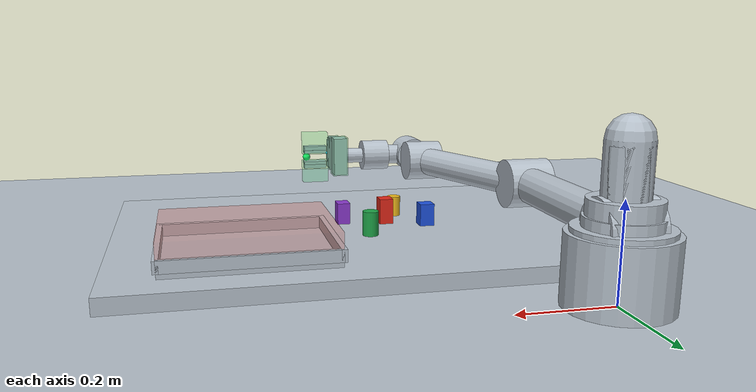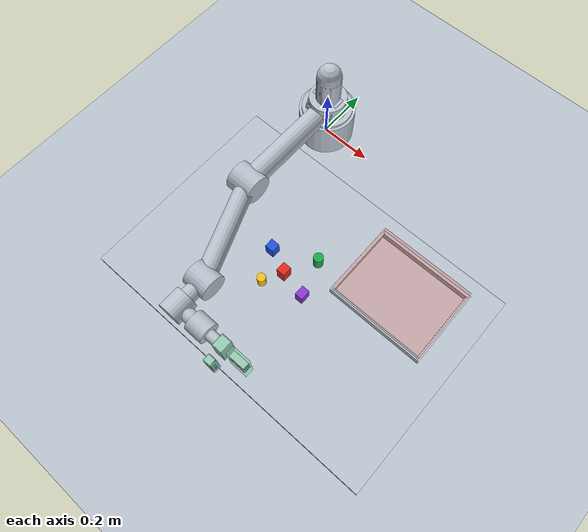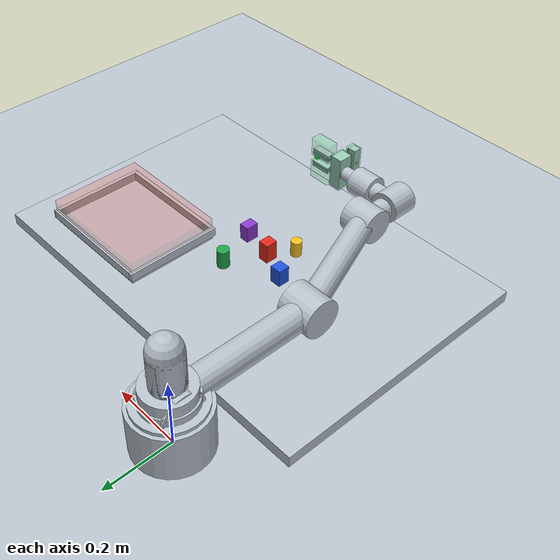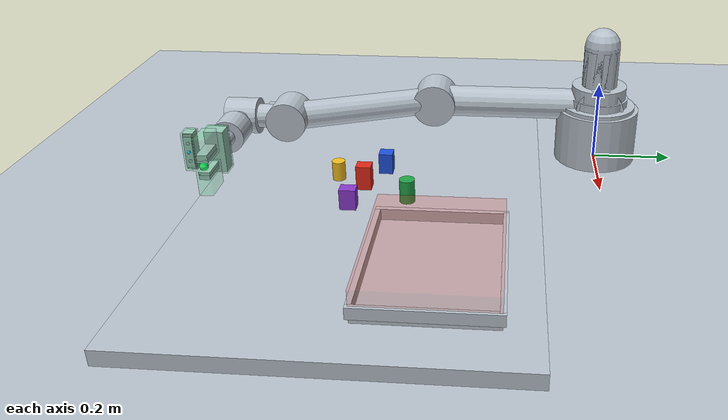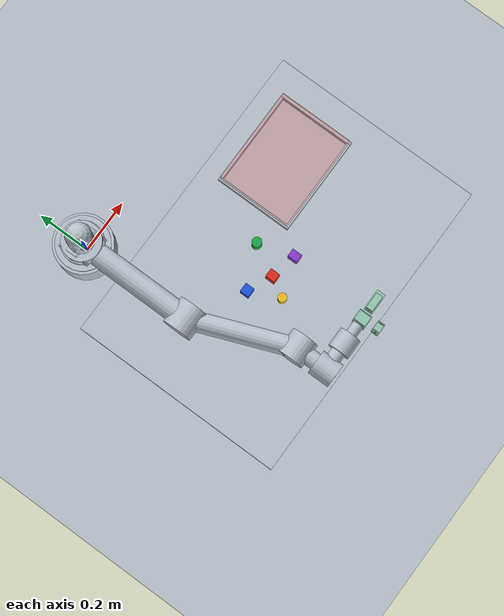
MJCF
<mujoco model="dobot_cr5_planning">
  <compiler angle="radian" autolimits="true" />
  <option timestep="0.002" gravity="0 0 -9.81" integrator="implicitfast" />
  <visual>
    <global offwidth="1280" offheight="960" />
  </visual>
  <default>
    <joint damping="2.0" armature="0.02" frictionloss="0.02" />
    <geom type="capsule" rgba="0.72 0.76 0.80 1" contype="0" conaffinity="0" group="1" />
    <site size="0.012" rgba="0.1 0.45 0.95 1" />
    <position kp="250" kv="18" forcerange="-120 120" />
  </default>
  <asset>
    <material name="base_mat" rgba="0.28 0.31 0.34 1" />
    <material name="link_mat" rgba="0.70 0.74 0.78 1" />
    <material name="joint_mat" rgba="0.12 0.14 0.16 1" />
    <material name="tool_mat" rgba="0.15 0.42 0.86 1" />
    <texture name="grid" type="2d" builtin="checker" rgb1="0.88 0.88 0.86" rgb2="0.72 0.74 0.76" width="512" height="512" />
    <material name="floor_mat" texture="grid" texrepeat="4 4" reflectance="0.15" />
    <material name="gripper_palm_mat" rgba="0.18 0.20 0.22 1" />
    <material name="gripper_finger_mat" rgba="0.06 0.07 0.08 1" />
    <material name="gripper_pad_mat" rgba="0.02 0.02 0.02 1" />
    <material name="pick_table_mat" rgba="0.55 0.57 0.54 1" />
    <material name="tray_mat" rgba="0.12 0.13 0.14 1" />
    <material name="red_cube_mat" rgba="0.88 0.16 0.1 1" />
    <material name="blue_cube_mat" rgba="0.12 0.32 0.86 1" />
    <material name="green_cylinder_mat" rgba="0.12 0.64 0.28 1" />
    <material name="yellow_cylinder_mat" rgba="0.95 0.74 0.12 1" />
    <material name="purple_cube_mat" rgba="0.54 0.22 0.8 1" />
    <material name="d435i_body_mat" rgba="0.18 0.19 0.20 1" />
    <material name="d435i_face_mat" rgba="0.02 0.025 0.030 1" />
    <material name="d435i_lens_mat" rgba="0.02 0.18 0.32 1" />
    <material name="d435i_accent_mat" rgba="0.05 0.58 0.95 1" />
  <material name="collision_mat" rgba="0.10 0.95 0.35 0.18" /></asset>
  <worldbody>
    <light name="key" pos="1.5 -2.0 2.5" dir="-1 1 -1" diffuse="0.8 0.8 0.8" />
    <geom name="floor" type="plane" size="1.8 1.8 0.02" material="floor_mat" contype="0" conaffinity="0" group="1" />
    <body name="base_link" pos="0 0 0">
      <geom name="base_column" type="cylinder" size="0.105 0.07" pos="0 0 0.07" material="base_mat" contype="0" conaffinity="0" group="1" />
      <geom name="base_top" type="cylinder" size="0.075 0.025" pos="0 0 0.145" material="joint_mat" contype="0" conaffinity="0" group="1" />
      <body name="Link1" pos="0 0 0.147">
        <joint name="joint1" type="hinge" axis="0 0 1" range="-3.14 3.14" />
        <geom name="link1_joint" type="cylinder" size="0.070 0.055" pos="0 0 0" material="joint_mat" contype="0" conaffinity="0" group="1" />
        <geom name="link1_body" fromto="0 0 0.03 0 0 0.16" size="0.045" material="link_mat" contype="0" conaffinity="0" group="1" />
        <body name="Link2" pos="0 0 0" euler="1.5708 1.5708 0">
          <joint name="joint2" type="hinge" axis="0 0 1" range="-3.14 3.14" />
          <geom name="link2_joint" type="cylinder" size="0.060 0.055" pos="0 0 0" material="joint_mat" contype="0" conaffinity="0" group="1" />
          <geom name="link2_arm" fromto="0 0 0 -0.427 0 0" size="0.040" material="link_mat" contype="0" conaffinity="0" group="1" />
          <body name="Link3" pos="-0.427 0 0">
            <joint name="joint3" type="hinge" axis="0 0 1" range="-2.86 2.86" />
            <geom name="link3_joint" type="cylinder" size="0.055 0.050" pos="0 0 0" material="joint_mat" contype="0" conaffinity="0" group="1" />
            <geom name="link3_arm" fromto="0 0 0 -0.357 0 0.141" size="0.035" material="link_mat" contype="0" conaffinity="0" group="1" />
            <body name="Link4" pos="-0.357 0 0.141" euler="0 0 -1.5708">
              <joint name="joint4" type="hinge" axis="0 0 1" range="-3.14 3.14" />
              <geom name="link4_joint" type="cylinder" size="0.050 0.045" pos="0 0 0" material="joint_mat" contype="0" conaffinity="0" group="1" />
              <geom name="link4_body" fromto="0 0 0 0 -0.116 0" size="0.030" material="link_mat" contype="0" conaffinity="0" group="1" />
              <body name="Link5" pos="0 -0.116 0" euler="1.5708 0 0">
                <joint name="joint5" type="hinge" axis="0 0 1" range="-3.14 3.14" />
                <geom name="link5_joint" type="cylinder" size="0.045 0.040" pos="0 0 0" material="joint_mat" contype="0" conaffinity="0" group="1" />
                <geom name="link5_body" fromto="0 0 0 0 0.105 0" size="0.026" material="link_mat" contype="0" conaffinity="0" group="1" />
                <body name="Link6" pos="0 0.105 0" euler="-1.5708 0 0">
                  <joint name="joint6" type="hinge" axis="0 0 1" range="-6.28 6.28" />
                  <geom name="link6_joint" type="cylinder" size="0.040 0.035" pos="0 0 0" material="joint_mat" contype="0" conaffinity="0" group="1" />
                  <geom name="tool_stub" fromto="0 0 0 0 0 0.08" size="0.020" material="tool_mat" contype="0" conaffinity="0" group="1" />
                  <site name="tool0" pos="0 0 0.08" quat="1 0 0 0" />
                  <body name="parallel_gripper" pos="0 0 0.08">
                    <geom name="gripper_palm" type="box" pos="0 0 0.018" size="0.050 0.022 0.018" material="gripper_palm_mat" contype="0" conaffinity="0" group="1" />
                    <site name="gripper_mount" pos="0 0 0" size="0.008" rgba="0.95 0.65 0.10 1" />
                    <site name="gripper_tcp" pos="0 0 0.110" size="0.010" rgba="0.10 0.95 0.40 1" />
                    <geom name="collision_gripper_palm_envelope" type="box" pos="0 0 0.018" size="0.052 0.024 0.020" rgba="0.10 0.95 0.35 0.16" contype="1" conaffinity="1" group="2" />
                    <geom name="collision_gripper_left_finger_sweep" type="box" pos="0.0385 0 0.087" size="0.029 0.016 0.034" rgba="0.10 0.95 0.35 0.16" contype="1" conaffinity="1" group="2" />
                    <geom name="collision_gripper_right_finger_sweep" type="box" pos="-0.0385 0 0.087" size="0.029 0.016 0.034" rgba="0.10 0.95 0.35 0.16" contype="1" conaffinity="1" group="2" />
                    <body name="gripper_left_finger" pos="0.023 0 0.052">
                      <joint name="gripper_left_slide" type="slide" axis="1 0 0" range="0 0.035" damping="0.6" armature="0.001" />
                      <geom name="gripper_left_finger_geom" type="box" pos="0 0 0.035" size="0.007 0.012 0.030" material="gripper_finger_mat" contype="0" conaffinity="0" group="1" />
                      <geom name="gripper_left_pad" type="box" pos="-0.0075 0 0.035" size="0.004 0.013 0.030" material="gripper_pad_mat" friction="3.0 0.08 0.006" condim="4" solref="0.006 1" solimp="0.95 0.99 0.002" contype="0" conaffinity="0" group="1" />
                    </body>
                    <body name="gripper_right_finger" pos="-0.023 0 0.052">
                      <joint name="gripper_right_slide" type="slide" axis="-1 0 0" range="0 0.035" damping="0.6" armature="0.001" />
                      <geom name="gripper_right_finger_geom" type="box" pos="0 0 0.035" size="0.007 0.012 0.030" material="gripper_finger_mat" contype="0" conaffinity="0" group="1" />
                      <geom name="gripper_right_pad" type="box" pos="0.0075 0 0.035" size="0.004 0.013 0.030" material="gripper_pad_mat" friction="3.0 0.08 0.006" condim="4" solref="0.006 1" solimp="0.95 0.99 0.002" contype="0" conaffinity="0" group="1" />
                    </body>
                    <body name="d435i_camera_body" pos="0 -0.060 0.024">
                      <geom name="d435i_body_geom" type="box" pos="0 0 0" size="0.045 0.012 0.013" material="d435i_body_mat" contype="0" conaffinity="0" group="1" />
                      <geom name="collision_d435i_body_envelope" type="box" pos="0 0 0.002" size="0.047 0.014 0.017" rgba="0.10 0.95 0.35 0.16" contype="1" conaffinity="1" group="2" />
                      <geom name="d435i_front_face" type="box" pos="0 0 0.0135" size="0.043 0.010 0.0015" material="d435i_face_mat" contype="0" conaffinity="0" group="1" />
                      <geom name="d435i_blue_accent" type="box" pos="0 0 0.0165" size="0.038 0.0105 0.0012" material="d435i_accent_mat" contype="0" conaffinity="0" group="1" />
                      <geom name="d435i_left_ir_lens" type="cylinder" pos="-0.022 0 0.016" size="0.004 0.002" material="d435i_lens_mat" contype="0" conaffinity="0" group="1" />
                      <geom name="d435i_rgb_lens" type="cylinder" pos="0 0 0.016" size="0.004 0.002" material="d435i_lens_mat" contype="0" conaffinity="0" group="1" />
                      <geom name="d435i_right_ir_lens" type="cylinder" pos="0.022 0 0.016" size="0.004 0.002" material="d435i_lens_mat" contype="0" conaffinity="0" group="1" />
                      <site name="d435i_mount" pos="0 0 -0.013" size="0.004" rgba="0.7 0.7 0.1 1" />
                      <site name="d435i_depth_optical_frame" pos="0 0 0.018" size="0.004" rgba="0.1 0.8 1 1" />
                      <camera name="d435i_depth" pos="0 0 0.018" xyaxes="1 0 0 0 -1 0" fovy="65" />
                      <camera name="d435i_rgb" pos="0 0 0.018" xyaxes="1 0 0 0 -1 0" fovy="65" />
                    </body>
                  </body>
                <geom name="collision_tool" type="capsule" fromto="0 0 0 0 0 0.08" size="0.020" material="collision_mat" contype="1" conaffinity="1" group="2" /></body>
              <geom name="collision_link5" type="capsule" fromto="0 0 0 0 0.105 0" size="0.026" material="collision_mat" contype="1" conaffinity="1" group="2" /></body>
            <geom name="collision_link4" type="capsule" fromto="0 0 0 0 -0.116 0" size="0.030" material="collision_mat" contype="1" conaffinity="1" group="2" /></body>
          <geom name="collision_link3" type="capsule" fromto="0 0 0 -0.357 0 0.141" size="0.035" material="collision_mat" contype="1" conaffinity="1" group="2" /></body>
        <geom name="collision_link2" type="capsule" fromto="0 0 0 -0.427 0 0" size="0.040" material="collision_mat" contype="1" conaffinity="1" group="2" /></body>
      <geom name="collision_link1" type="capsule" fromto="0 0 0.025 0 0 0.150" size="0.045" material="collision_mat" contype="1" conaffinity="1" group="2" /></body>
    <geom name="collision_base" type="cylinder" size="0.095 0.075" pos="0 0 0.075" material="collision_mat" contype="1" conaffinity="1" group="2" /></body>
    <geom name="pick_table" type="box" pos="0.35 -0.55 0.0175" size="0.58 0.4 0.0175" material="pick_table_mat" friction="1.0 0.02 0.002" contype="0" conaffinity="0" group="1" />
    <geom name="tabletop_tray_floor" type="box" pos="0.64 -0.37 0.041" size="0.18 0.14 0.006" material="tray_mat" friction="1.2 0.02 0.002" contype="0" conaffinity="0" group="1" />
    <geom name="tabletop_tray_wall_front" type="box" pos="0.82 -0.37 0.06" size="0.006 0.146 0.013" material="tray_mat" friction="1.2 0.02 0.002" contype="0" conaffinity="0" group="1" />
    <geom name="tabletop_tray_wall_back" type="box" pos="0.46 -0.37 0.06" size="0.006 0.146 0.013" material="tray_mat" friction="1.2 0.02 0.002" contype="0" conaffinity="0" group="1" />
    <geom name="tabletop_tray_wall_left" type="box" pos="0.64 -0.51 0.06" size="0.18 0.006 0.013" material="tray_mat" friction="1.2 0.02 0.002" contype="0" conaffinity="0" group="1" />
    <geom name="tabletop_tray_wall_right" type="box" pos="0.64 -0.23 0.06" size="0.18 0.006 0.013" material="tray_mat" friction="1.2 0.02 0.002" contype="0" conaffinity="0" group="1" />
    <body name="red_cube" pos="0.295 -0.57 0.065">
      <freejoint name="red_cube_free" />
      <geom name="red_cube_geom" type="box" size="0.016 0.018 0.03" material="red_cube_mat" rgba="0.88 0.16 0.1 1" mass="0.02" friction="3 0.08 0.006" condim="4" solref="0.006 1" solimp="0.95 0.99 0.002" contype="0" conaffinity="0" group="1" />
    </body>
    <body name="blue_cube" pos="0.205 -0.53 0.061">
      <freejoint name="blue_cube_free" />
      <geom name="blue_cube_geom" type="box" size="0.017 0.017 0.026" material="blue_cube_mat" rgba="0.12 0.32 0.86 1" mass="0.02" friction="3 0.08 0.006" condim="4" solref="0.006 1" solimp="0.95 0.99 0.002" contype="0" conaffinity="0" group="1" />
    </body>
    <body name="green_cylinder" pos="0.355 -0.46 0.063">
      <freejoint name="green_cylinder_free" />
      <geom name="green_cylinder_geom" type="cylinder" size="0.018 0.028" material="green_cylinder_mat" rgba="0.12 0.64 0.28 1" mass="0.02" friction="3 0.08 0.006" condim="4" solref="0.006 1" solimp="0.95 0.99 0.002" contype="0" conaffinity="0" group="1" />
    </body>
    <body name="yellow_cylinder" pos="0.255 -0.64 0.059">
      <freejoint name="yellow_cylinder_free" />
      <geom name="yellow_cylinder_geom" type="cylinder" size="0.016 0.024" material="yellow_cylinder_mat" rgba="0.95 0.74 0.12 1" mass="0.02" friction="3 0.08 0.006" condim="4" solref="0.006 1" solimp="0.95 0.99 0.002" contype="0" conaffinity="0" group="1" />
    </body>
    <body name="purple_cube" pos="0.395 -0.59 0.06">
      <freejoint name="purple_cube_free" />
      <geom name="purple_cube_geom" type="box" size="0.015 0.019 0.025" material="purple_cube_mat" rgba="0.54 0.22 0.8 1" mass="0.02" friction="3 0.08 0.006" condim="4" solref="0.006 1" solimp="0.95 0.99 0.002" contype="0" conaffinity="0" group="1" />
    </body>
  <geom name="floor_collision" type="plane" pos="0 0 0" size="1.8 1.8 0.02" rgba="0.2 0.7 0.2 0.20" contype="1" conaffinity="1" group="2" /><geom name="planning_obstacle_tray_keepout" type="box" pos="0.64 -0.37 0.077" size="0.18 0.14 0.03" rgba="0.95 0.20 0.10 0.18" contype="1" conaffinity="1" group="2" /></worldbody>
  <actuator>
    <position name="joint1_position" joint="joint1" ctrlrange="-3.14 3.14" kp="420" kv="60" forcerange="-320 320" />
    <position name="joint2_position" joint="joint2" ctrlrange="-3.14 3.14" kp="420" kv="60" forcerange="-320 320" />
    <position name="joint3_position" joint="joint3" ctrlrange="-2.86 2.86" kp="420" kv="60" forcerange="-320 320" />
    <position name="joint4_position" joint="joint4" ctrlrange="-3.14 3.14" kp="420" kv="60" forcerange="-320 320" />
    <position name="joint5_position" joint="joint5" ctrlrange="-3.14 3.14" kp="420" kv="60" forcerange="-320 320" />
    <position name="joint6_position" joint="joint6" ctrlrange="-6.28 6.28" kp="420" kv="60" forcerange="-320 320" />
    <position name="gripper_left_position" joint="gripper_left_slide" ctrlrange="0 0.035" kp="300" kv="12" forcerange="-80 80" />
    <position name="gripper_right_position" joint="gripper_right_slide" ctrlrange="0 0.035" kp="300" kv="12" forcerange="-80 80" />
  </actuator>
  <keyframe>
    <key name="home" qpos="0 0 0 0 0 0 0.025 0.025" ctrl="0 0 0 0 0 0 0.025 0.025" />
    <key name="ready" qpos="0 -0.6 0.85 0 -0.8 0 0.025 0.025" ctrl="0 -0.6 0.85 0 -0.8 0 0.025 0.025" />
  </keyframe>
</mujoco>
